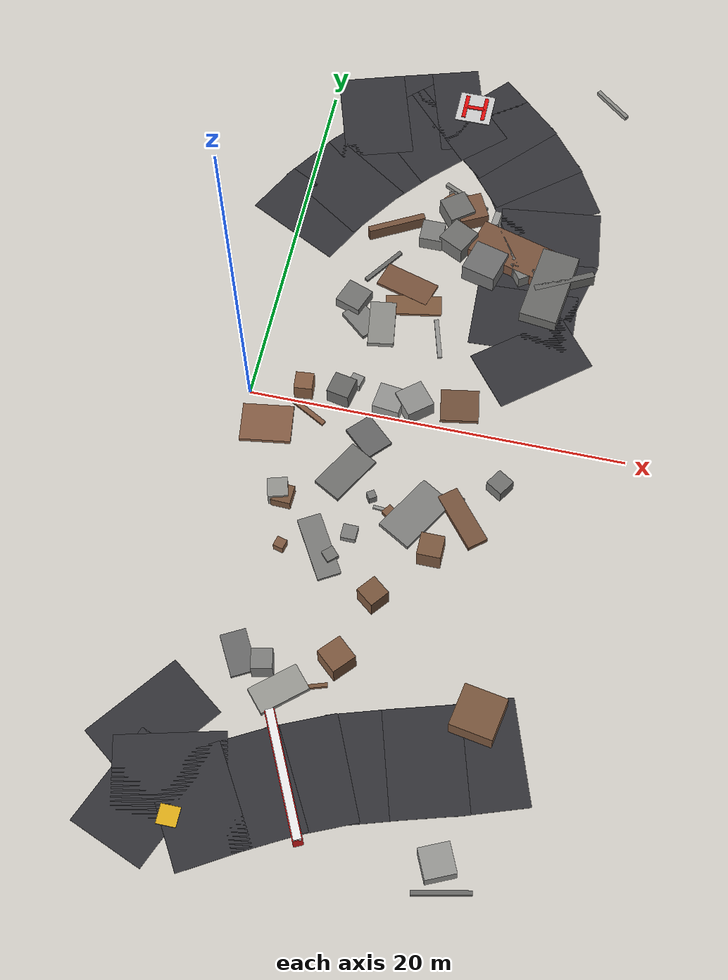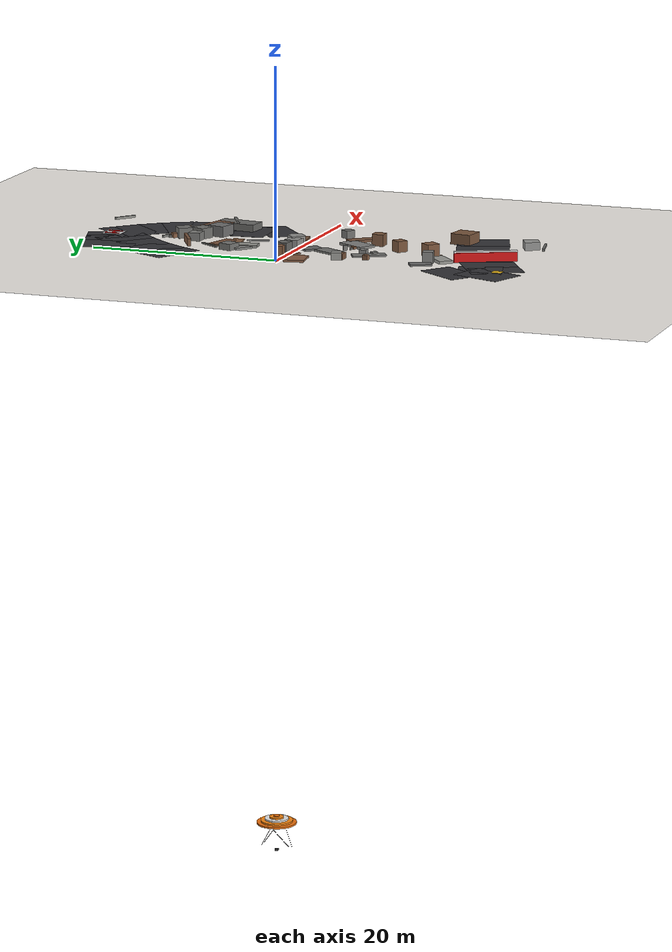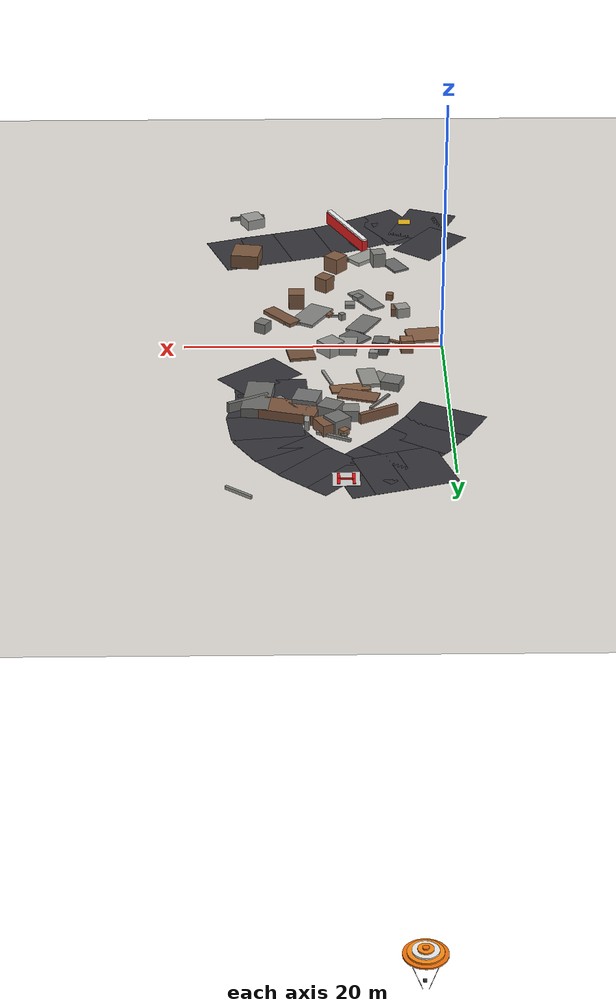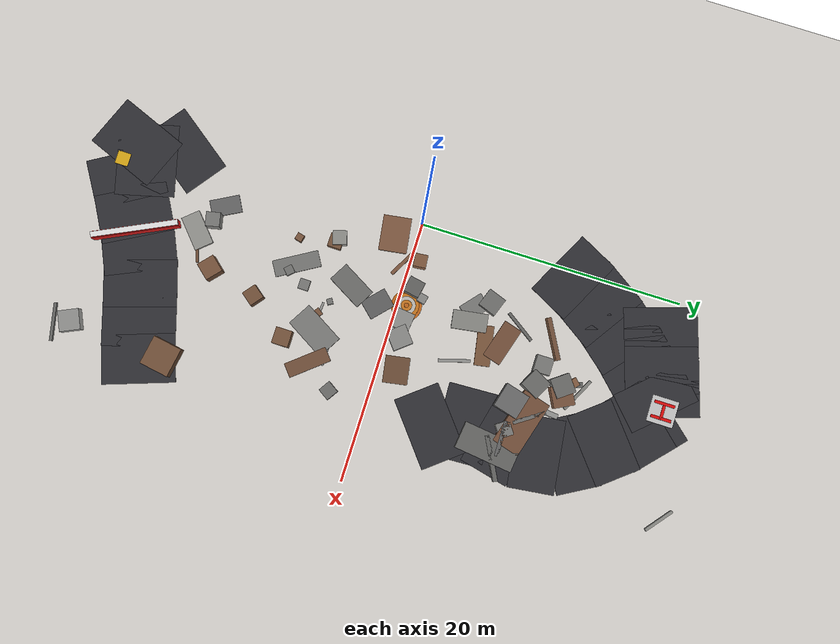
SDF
<sdf version="1.6">
 <world name="navitas_arena">
  <model name="ground_plane">
   <static>true</static>
   <link name="link">
    <collision name="collision">
     <geometry><plane><normal>0 0 1</normal><size>400 400</size></plane></geometry>
     <surface><friction><ode><mu>0.550</mu><mu2>0.550</mu2></ode></friction></surface>
    </collision>
    <visual name="visual">
     <cast_shadows>false</cast_shadows>
     <geometry><plane><normal>0 0 1</normal><size>400 400</size></plane></geometry>
     <material><ambient>0.450 0.400 0.320 1</ambient><diffuse>0.450 0.400 0.320 1</diffuse></material>
    </visual>
   </link>
  </model>
  <model name="road_orta_1_0">
   <static>true</static>
   <pose>0.477 -22.399 0.040 0 0 2.760</pose>
   <link name="link">
    <collision name="col"><geometry><box><size>4.130 5.500 0.020</size></box></geometry></collision>
    <visual name="vis">
     <geometry><box><size>4.130 5.500 0.020</size></box></geometry>
     <material><ambient>0.20 0.20 0.22 1</ambient><diffuse>0.20 0.20 0.22 1</diffuse></material>
    </visual>
   </link>
  </model>
  <model name="road_orta_1_23">
   <static>true</static>
   <pose>2.470 19.305 0.040 0 0 0.305</pose>
   <link name="link">
    <collision name="col"><geometry><box><size>3.798 5.500 0.020</size></box></geometry></collision>
    <visual name="vis">
     <geometry><box><size>3.798 5.500 0.020</size></box></geometry>
     <material><ambient>0.20 0.20 0.22 1</ambient><diffuse>0.20 0.20 0.22 1</diffuse></material>
    </visual>
   </link>
  </model>
  <model name="road_orta_1_24">
   <static>true</static>
   <pose>5.068 20.108 0.040 0 0 0.294</pose>
   <link name="link">
    <collision name="col"><geometry><box><size>3.441 5.500 0.020</size></box></geometry></collision>
    <visual name="vis">
     <geometry><box><size>3.441 5.500 0.020</size></box></geometry>
     <material><ambient>0.20 0.20 0.22 1</ambient><diffuse>0.20 0.20 0.22 1</diffuse></material>
    </visual>
   </link>
  </model>
  <model name="road_orta_1_25">
   <static>true</static>
   <pose>7.133 20.738 0.040 0 0 0.299</pose>
   <link name="link">
    <collision name="col"><geometry><box><size>2.678 5.500 0.020</size></box></geometry></collision>
    <visual name="vis">
     <geometry><box><size>2.678 5.500 0.020</size></box></geometry>
     <material><ambient>0.20 0.20 0.22 1</ambient><diffuse>0.20 0.20 0.22 1</diffuse></material>
    </visual>
   </link>
  </model>
  <model name="road_orta_2_0">
   <static>true</static>
   <pose>1.531 -21.250 0.040 0 0 1.820</pose>
   <link name="link">
    <collision name="col"><geometry><box><size>4.511 5.500 0.020</size></box></geometry></collision>
    <visual name="vis">
     <geometry><box><size>4.511 5.500 0.020</size></box></geometry>
     <material><ambient>0.20 0.20 0.22 1</ambient><diffuse>0.20 0.20 0.22 1</diffuse></material>
    </visual>
   </link>
  </model>
  <model name="road_orta_2_1">
   <static>true</static>
   <pose>0.006 -18.696 0.040 0 0 2.502</pose>
   <link name="link">
    <collision name="col"><geometry><box><size>3.594 5.500 0.020</size></box></geometry></collision>
    <visual name="vis">
     <geometry><box><size>3.594 5.500 0.020</size></box></geometry>
     <material><ambient>0.20 0.20 0.22 1</ambient><diffuse>0.20 0.20 0.22 1</diffuse></material>
    </visual>
   </link>
  </model>
  <model name="road_orta_2_13">
   <static>true</static>
   <pose>0.463 11.926 0.040 0 0 1.095</pose>
   <link name="link">
    <collision name="col"><geometry><box><size>3.317 5.500 0.020</size></box></geometry></collision>
    <visual name="vis">
     <geometry><box><size>3.317 5.500 0.020</size></box></geometry>
     <material><ambient>0.20 0.20 0.22 1</ambient><diffuse>0.20 0.20 0.22 1</diffuse></material>
    </visual>
   </link>
  </model>
  <model name="road_orta_2_14">
   <static>true</static>
   <pose>1.842 14.234 0.040 0 0 0.981</pose>
   <link name="link">
    <collision name="col"><geometry><box><size>3.871 5.500 0.020</size></box></geometry></collision>
    <visual name="vis">
     <geometry><box><size>3.871 5.500 0.020</size></box></geometry>
     <material><ambient>0.20 0.20 0.22 1</ambient><diffuse>0.20 0.20 0.22 1</diffuse></material>
    </visual>
   </link>
  </model>
  <model name="road_orta_2_15">
   <static>true</static>
   <pose>3.529 16.484 0.040 0 0 0.868</pose>
   <link name="link">
    <collision name="col"><geometry><box><size>3.563 5.500 0.020</size></box></geometry></collision>
    <visual name="vis">
     <geometry><box><size>3.563 5.500 0.020</size></box></geometry>
     <material><ambient>0.20 0.20 0.22 1</ambient><diffuse>0.20 0.20 0.22 1</diffuse></material>
    </visual>
   </link>
  </model>
  <model name="road_orta_2_16">
   <static>true</static>
   <pose>5.394 18.516 0.040 0 0 0.791</pose>
   <link name="link">
    <collision name="col"><geometry><box><size>3.756 5.500 0.020</size></box></geometry></collision>
    <visual name="vis">
     <geometry><box><size>3.756 5.500 0.020</size></box></geometry>
     <material><ambient>0.20 0.20 0.22 1</ambient><diffuse>0.20 0.20 0.22 1</diffuse></material>
    </visual>
   </link>
  </model>
  <model name="road_orta_2_17">
   <static>true</static>
   <pose>7.190 20.266 0.040 0 0 0.747</pose>
   <link name="link">
    <collision name="col"><geometry><box><size>3.061 5.500 0.020</size></box></geometry></collision>
    <visual name="vis">
     <geometry><box><size>3.061 5.500 0.020</size></box></geometry>
     <material><ambient>0.20 0.20 0.22 1</ambient><diffuse>0.20 0.20 0.22 1</diffuse></material>
    </visual>
   </link>
  </model>
  <model name="road_orta_3_0">
   <static>true</static>
   <pose>3.199 -22.266 0.040 0 0 0.541</pose>
   <link name="link">
    <collision name="col"><geometry><box><size>3.753 5.500 0.020</size></box></geometry></collision>
    <visual name="vis">
     <geometry><box><size>3.753 5.500 0.020</size></box></geometry>
     <material><ambient>0.20 0.20 0.22 1</ambient><diffuse>0.20 0.20 0.22 1</diffuse></material>
    </visual>
   </link>
  </model>
  <model name="road_orta_3_1">
   <static>true</static>
   <pose>5.646 -20.856 0.040 0 0 0.504</pose>
   <link name="link">
    <collision name="col"><geometry><box><size>3.696 5.500 0.020</size></box></geometry></collision>
    <visual name="vis">
     <geometry><box><size>3.696 5.500 0.020</size></box></geometry>
     <material><ambient>0.20 0.20 0.22 1</ambient><diffuse>0.20 0.20 0.22 1</diffuse></material>
    </visual>
   </link>
  </model>
  <model name="road_orta_3_2">
   <static>true</static>
   <pose>8.079 -19.642 0.040 0 0 0.420</pose>
   <link name="link">
    <collision name="col"><geometry><box><size>3.548 5.500 0.020</size></box></geometry></collision>
    <visual name="vis">
     <geometry><box><size>3.548 5.500 0.020</size></box></geometry>
     <material><ambient>0.20 0.20 0.22 1</ambient><diffuse>0.20 0.20 0.22 1</diffuse></material>
    </visual>
   </link>
  </model>
  <model name="road_orta_3_3">
   <static>true</static>
   <pose>10.548 -18.702 0.040 0 0 0.307</pose>
   <link name="link">
    <collision name="col"><geometry><box><size>3.545 5.500 0.020</size></box></geometry></collision>
    <visual name="vis">
     <geometry><box><size>3.545 5.500 0.020</size></box></geometry>
     <material><ambient>0.20 0.20 0.22 1</ambient><diffuse>0.20 0.20 0.22 1</diffuse></material>
    </visual>
   </link>
  </model>
  <model name="road_orta_3_4">
   <static>true</static>
   <pose>13.211 -17.886 0.040 0 0 0.289</pose>
   <link name="link">
    <collision name="col"><geometry><box><size>3.826 5.500 0.020</size></box></geometry></collision>
    <visual name="vis">
     <geometry><box><size>3.826 5.500 0.020</size></box></geometry>
     <material><ambient>0.20 0.20 0.22 1</ambient><diffuse>0.20 0.20 0.22 1</diffuse></material>
    </visual>
   </link>
  </model>
  <model name="road_orta_3_5">
   <static>true</static>
   <pose>15.912 -17.017 0.040 0 0 0.335</pose>
   <link name="link">
    <collision name="col"><geometry><box><size>3.650 5.500 0.020</size></box></geometry></collision>
    <visual name="vis">
     <geometry><box><size>3.650 5.500 0.020</size></box></geometry>
     <material><ambient>0.20 0.20 0.22 1</ambient><diffuse>0.20 0.20 0.22 1</diffuse></material>
    </visual>
   </link>
  </model>
  <model name="road_orta_3_14">
   <static>true</static>
   <pose>14.162 5.000 0.040 0 0 2.250</pose>
   <link name="link">
    <collision name="col"><geometry><box><size>3.471 5.500 0.020</size></box></geometry></collision>
    <visual name="vis">
     <geometry><box><size>3.471 5.500 0.020</size></box></geometry>
     <material><ambient>0.20 0.20 0.22 1</ambient><diffuse>0.20 0.20 0.22 1</diffuse></material>
    </visual>
   </link>
  </model>
  <model name="road_orta_3_15">
   <static>true</static>
   <pose>13.293 7.460 0.040 0 0 1.613</pose>
   <link name="link">
    <collision name="col"><geometry><box><size>3.823 5.500 0.020</size></box></geometry></collision>
    <visual name="vis">
     <geometry><box><size>3.823 5.500 0.020</size></box></geometry>
     <material><ambient>0.20 0.20 0.22 1</ambient><diffuse>0.20 0.20 0.22 1</diffuse></material>
    </visual>
   </link>
  </model>
  <model name="road_orta_3_16">
   <static>true</static>
   <pose>13.566 10.340 0.040 0 0 1.339</pose>
   <link name="link">
    <collision name="col"><geometry><box><size>3.818 5.500 0.020</size></box></geometry></collision>
    <visual name="vis">
     <geometry><box><size>3.818 5.500 0.020</size></box></geometry>
     <material><ambient>0.20 0.20 0.22 1</ambient><diffuse>0.20 0.20 0.22 1</diffuse></material>
    </visual>
   </link>
  </model>
  <model name="road_orta_3_17">
   <static>true</static>
   <pose>13.746 13.042 0.040 0 0 1.692</pose>
   <link name="link">
    <collision name="col"><geometry><box><size>3.483 5.500 0.020</size></box></geometry></collision>
    <visual name="vis">
     <geometry><box><size>3.483 5.500 0.020</size></box></geometry>
     <material><ambient>0.20 0.20 0.22 1</ambient><diffuse>0.20 0.20 0.22 1</diffuse></material>
    </visual>
   </link>
  </model>
  <model name="road_orta_3_18">
   <static>true</static>
   <pose>12.963 15.414 0.040 0 0 2.093</pose>
   <link name="link">
    <collision name="col"><geometry><box><size>3.415 5.500 0.020</size></box></geometry></collision>
    <visual name="vis">
     <geometry><box><size>3.415 5.500 0.020</size></box></geometry>
     <material><ambient>0.20 0.20 0.22 1</ambient><diffuse>0.20 0.20 0.22 1</diffuse></material>
    </visual>
   </link>
  </model>
  <model name="road_orta_3_19">
   <static>true</static>
   <pose>11.514 17.516 0.040 0 0 2.253</pose>
   <link name="link">
    <collision name="col"><geometry><box><size>3.507 5.500 0.020</size></box></geometry></collision>
    <visual name="vis">
     <geometry><box><size>3.507 5.500 0.020</size></box></geometry>
     <material><ambient>0.20 0.20 0.22 1</ambient><diffuse>0.20 0.20 0.22 1</diffuse></material>
    </visual>
   </link>
  </model>
  <model name="road_orta_3_20">
   <static>true</static>
   <pose>9.677 19.461 0.040 0 0 2.398</pose>
   <link name="link">
    <collision name="col"><geometry><box><size>3.659 5.500 0.020</size></box></geometry></collision>
    <visual name="vis">
     <geometry><box><size>3.659 5.500 0.020</size></box></geometry>
     <material><ambient>0.20 0.20 0.22 1</ambient><diffuse>0.20 0.20 0.22 1</diffuse></material>
    </visual>
   </link>
  </model>
  <model name="road_orta_3_21">
   <static>true</static>
   <pose>8.322 20.697 0.040 0 0 2.412</pose>
   <link name="link">
    <collision name="col"><geometry><box><size>1.809 5.500 0.020</size></box></geometry></collision>
    <visual name="vis">
     <geometry><box><size>1.809 5.500 0.020</size></box></geometry>
     <material><ambient>0.20 0.20 0.22 1</ambient><diffuse>0.20 0.20 0.22 1</diffuse></material>
    </visual>
   </link>
  </model>
  <model name="bar_orta_3">
   <static>true</static>
   <pose>6.870 -20.182 0.500 0 0 2.019</pose>
   <link name="link">
    <collision name="col"><geometry><box><size>6.500 0.500 1.000</size></box></geometry></collision>
    <visual name="vis">
     <geometry><box><size>6.500 0.500 1.000</size></box></geometry>
     <material><ambient>0.85 0.10 0.10 1</ambient><diffuse>0.85 0.10 0.10 1</diffuse></material>
    </visual>
   </link>
  </model>
  <model name="bar_orta_3b">
   <static>true</static>
   <pose>6.870 -20.182 1.000 0 0 2.019</pose>
   <link name="link">
    <collision name="col"><geometry><box><size>6.500 0.400 0.300</size></box></geometry></collision>
    <visual name="vis">
     <geometry><box><size>6.500 0.400 0.300</size></box></geometry>
     <material><ambient>0.95 0.95 0.95 1</ambient><diffuse>0.95 0.95 0.95 1</diffuse></material>
    </visual>
   </link>
  </model>
  <model name="blk_orta_3_0_4">
   <static>true</static>
   <pose>15.220 -15.275 0.569 0 0 2.973</pose>
   <link name="link">
    <collision name="col"><geometry><box><size>2.227 2.227 1.138</size></box></geometry></collision>
    <visual name="vis">
     <geometry><box><size>2.227 2.227 1.138</size></box></geometry>
     <material><ambient>0.48 0.34 0.24 1</ambient><diffuse>0.48 0.34 0.24 1</diffuse></material>
    </visual>
   </link>
  </model>
  <model name="blk_orta_3_2_0">
   <static>true</static>
   <pose>10.547 11.632 0.400 0 0 1.480</pose>
   <link name="link">
    <collision name="col"><geometry><box><size>4.009 0.379 0.800</size></box></geometry></collision>
    <visual name="vis">
     <geometry><box><size>4.009 0.379 0.800</size></box></geometry>
     <material><ambient>0.61 0.61 0.60 1</ambient><diffuse>0.61 0.61 0.60 1</diffuse></material>
    </visual>
   </link>
  </model>
  <model name="blk_orta_3_2_1">
   <static>true</static>
   <pose>10.640 10.084 0.571 0 0 1.307</pose>
   <link name="link">
    <collision name="col"><geometry><box><size>1.881 1.881 1.143</size></box></geometry></collision>
    <visual name="vis">
     <geometry><box><size>1.881 1.881 1.143</size></box></geometry>
     <material><ambient>0.44 0.44 0.44 1</ambient><diffuse>0.44 0.44 0.44 1</diffuse></material>
    </visual>
   </link>
  </model>
  <model name="blk_orta_3_2_2">
   <static>true</static>
   <pose>11.931 11.241 0.400 0 0 2.860</pose>
   <link name="link">
    <collision name="col"><geometry><box><size>4.355 2.118 0.800</size></box></geometry></collision>
    <visual name="vis">
     <geometry><box><size>4.355 2.118 0.800</size></box></geometry>
     <material><ambient>0.48 0.33 0.24 1</ambient><diffuse>0.48 0.33 0.24 1</diffuse></material>
    </visual>
   </link>
  </model>
  <model name="blk_orta_3_2_3">
   <static>true</static>
   <pose>11.399 11.676 0.400 0 0 2.165</pose>
   <link name="link">
    <collision name="col"><geometry><box><size>2.487 0.286 0.800</size></box></geometry></collision>
    <visual name="vis">
     <geometry><box><size>2.487 0.286 0.800</size></box></geometry>
     <material><ambient>0.46 0.46 0.45 1</ambient><diffuse>0.46 0.46 0.45 1</diffuse></material>
    </visual>
   </link>
  </model>
  <model name="blk_orta_3_2_4">
   <static>true</static>
   <pose>15.040 9.894 0.400 0 0 0.474</pose>
   <link name="link">
    <collision name="col"><geometry><box><size>3.369 0.335 0.800</size></box></geometry></collision>
    <visual name="vis">
     <geometry><box><size>3.369 0.335 0.800</size></box></geometry>
     <material><ambient>0.41 0.41 0.40 1</ambient><diffuse>0.41 0.41 0.40 1</diffuse></material>
    </visual>
   </link>
  </model>
  <model name="blk_orta_3_2_5">
   <static>true</static>
   <pose>12.753 10.206 0.400 0 0 0.592</pose>
   <link name="link">
    <collision name="col"><geometry><box><size>1.083 1.083 0.800</size></box></geometry></collision>
    <visual name="vis">
     <geometry><box><size>1.083 1.083 0.800</size></box></geometry>
     <material><ambient>0.50 0.50 0.49 1</ambient><diffuse>0.50 0.50 0.49 1</diffuse></material>
    </visual>
   </link>
  </model>
  <model name="blk_orta_3_2_6">
   <static>true</static>
   <pose>13.459 10.180 0.400 0 0 3.140</pose>
   <link name="link">
    <collision name="col"><geometry><box><size>2.634 0.311 0.800</size></box></geometry></collision>
    <visual name="vis">
     <geometry><box><size>2.634 0.311 0.800</size></box></geometry>
     <material><ambient>0.41 0.41 0.41 1</ambient><diffuse>0.41 0.41 0.41 1</diffuse></material>
    </visual>
   </link>
  </model>
  <model name="blk_orta_3_2_7">
   <static>true</static>
   <pose>14.312 9.441 0.400 0 0 1.447</pose>
   <link name="link">
    <collision name="col"><geometry><box><size>4.401 2.040 0.800</size></box></geometry></collision>
    <visual name="vis">
     <geometry><box><size>4.401 2.040 0.800</size></box></geometry>
     <material><ambient>0.42 0.42 0.41 1</ambient><diffuse>0.42 0.42 0.41 1</diffuse></material>
    </visual>
   </link>
  </model>
  <model name="deb_orta_5">
   <static>true</static>
   <pose>12.416 -5.000 0.147 0 0 2.264</pose>
   <link name="link">
    <collision name="col"><geometry><box><size>3.263 1.098 0.294</size></box></geometry></collision>
    <visual name="vis">
     <geometry><box><size>3.263 1.098 0.294</size></box></geometry>
     <material><ambient>0.47 0.33 0.24 1</ambient><diffuse>0.47 0.33 0.24 1</diffuse></material>
    </visual>
   </link>
  </model>
  <model name="deb_orta_12">
   <static>true</static>
   <pose>10.986 1.422 0.120 0 0 1.738</pose>
   <link name="link">
    <collision name="col"><geometry><box><size>1.837 2.015 0.240</size></box></geometry></collision>
    <visual name="vis">
     <geometry><box><size>1.837 2.015 0.240</size></box></geometry>
     <material><ambient>0.45 0.32 0.23 1</ambient><diffuse>0.45 0.32 0.23 1</diffuse></material>
    </visual>
   </link>
  </model>
  <model name="deb_orta_14">
   <static>true</static>
   <pose>4.476 -14.843 0.587 0 0 0.213</pose>
   <link name="link">
    <collision name="col"><geometry><box><size>1.065 1.065 1.173</size></box></geometry></collision>
    <visual name="vis">
     <geometry><box><size>1.065 1.065 1.173</size></box></geometry>
     <material><ambient>0.50 0.50 0.49 1</ambient><diffuse>0.50 0.50 0.49 1</diffuse></material>
    </visual>
   </link>
  </model>
  <model name="deb_orta_19">
   <static>true</static>
   <pose>4.114 6.676 0.339 0 0 2.794</pose>
   <link name="link">
    <collision name="col"><geometry><box><size>1.428 1.428 0.678</size></box></geometry></collision>
    <visual name="vis">
     <geometry><box><size>1.428 1.428 0.678</size></box></geometry>
     <material><ambient>0.46 0.46 0.45 1</ambient><diffuse>0.46 0.46 0.45 1</diffuse></material>
    </visual>
   </link>
  </model>
  <model name="deb_orta_21">
   <static>true</static>
   <pose>3.743 -8.395 0.254 0 0 2.897</pose>
   <link name="link">
    <collision name="col"><geometry><box><size>0.539 0.539 0.508</size></box></geometry></collision>
    <visual name="vis">
     <geometry><box><size>0.539 0.539 0.508</size></box></geometry>
     <material><ambient>0.51 0.36 0.26 1</ambient><diffuse>0.51 0.36 0.26 1</diffuse></material>
    </visual>
   </link>
  </model>
  <model name="deb_orta_28">
   <static>true</static>
   <pose>3.127 -14.437 0.082 0 0 2.074</pose>
   <link name="link">
    <collision name="col"><geometry><box><size>2.271 1.317 0.164</size></box></geometry></collision>
    <visual name="vis">
     <geometry><box><size>2.271 1.317 0.164</size></box></geometry>
     <material><ambient>0.42 0.42 0.42 1</ambient><diffuse>0.42 0.42 0.42 1</diffuse></material>
    </visual>
   </link>
  </model>
  <model name="deb_orta_41">
   <static>true</static>
   <pose>15.202 -23.885 0.137 0 0 0.207</pose>
   <link name="link">
    <collision name="col"><geometry><box><size>2.855 0.220 0.275</size></box></geometry></collision>
    <visual name="vis">
     <geometry><box><size>2.855 0.220 0.275</size></box></geometry>
     <material><ambient>0.42 0.42 0.41 1</ambient><diffuse>0.42 0.42 0.41 1</diffuse></material>
    </visual>
   </link>
  </model>
  <model name="deb_orta_44">
   <static>true</static>
   <pose>9.169 13.535 0.440 0 0 2.048</pose>
   <link name="link">
    <collision name="col"><geometry><box><size>1.590 1.590 0.880</size></box></geometry></collision>
    <visual name="vis">
     <geometry><box><size>1.590 1.590 0.880</size></box></geometry>
     <material><ambient>0.49 0.34 0.25 1</ambient><diffuse>0.49 0.34 0.25 1</diffuse></material>
    </visual>
   </link>
  </model>
  <model name="deb_orta_46">
   <static>true</static>
   <pose>7.371 0.736 0.437 0 0 3.025</pose>
   <link name="link">
    <collision name="col"><geometry><box><size>1.445 1.445 0.875</size></box></geometry></collision>
    <visual name="vis">
     <geometry><box><size>1.445 1.445 0.875</size></box></geometry>
     <material><ambient>0.59 0.59 0.58 1</ambient><diffuse>0.59 0.59 0.58 1</diffuse></material>
    </visual>
   </link>
  </model>
  <model name="deb_orta_49">
   <static>true</static>
   <pose>15.689 22.864 0.123 0 0 2.465</pose>
   <link name="link">
    <collision name="col"><geometry><box><size>2.395 0.215 0.246</size></box></geometry></collision>
    <visual name="vis">
     <geometry><box><size>2.395 0.215 0.246</size></box></geometry>
     <material><ambient>0.57 0.57 0.55 1</ambient><diffuse>0.57 0.57 0.55 1</diffuse></material>
    </visual>
   </link>
  </model>
  <model name="deb_orta_51">
   <static>true</static>
   <pose>8.665 0.924 0.505 0 0 0.687</pose>
   <link name="link">
    <collision name="col"><geometry><box><size>1.512 1.512 1.010</size></box></geometry></collision>
    <visual name="vis">
     <geometry><box><size>1.512 1.512 1.010</size></box></geometry>
     <material><ambient>0.57 0.57 0.56 1</ambient><diffuse>0.57 0.57 0.56 1</diffuse></material>
    </visual>
   </link>
  </model>
  <model name="deb_orta_54">
   <static>true</static>
   <pose>9.030 5.280 0.072 0 0 1.854</pose>
   <link name="link">
    <collision name="col"><geometry><box><size>2.383 0.234 0.144</size></box></geometry></collision>
    <visual name="vis">
     <geometry><box><size>2.383 0.234 0.144</size></box></geometry>
     <material><ambient>0.59 0.59 0.58 1</ambient><diffuse>0.59 0.59 0.58 1</diffuse></material>
    </visual>
   </link>
  </model>
  <model name="deb_orta_58">
   <static>true</static>
   <pose>2.791 0.712 0.527 0 0 1.662</pose>
   <link name="link">
    <collision name="col"><geometry><box><size>0.965 0.965 1.055</size></box></geometry></collision>
    <visual name="vis">
     <geometry><box><size>0.965 0.965 1.055</size></box></geometry>
     <material><ambient>0.53 0.37 0.26 1</ambient><diffuse>0.53 0.37 0.26 1</diffuse></material>
    </visual>
   </link>
  </model>
  <model name="deb_orta_59">
   <static>true</static>
   <pose>7.972 14.610 0.129 0 0 0.261</pose>
   <link name="link">
    <collision name="col"><geometry><box><size>0.421 0.421 0.258</size></box></geometry></collision>
    <visual name="vis">
     <geometry><box><size>0.421 0.421 0.258</size></box></geometry>
     <material><ambient>0.40 0.40 0.39 1</ambient><diffuse>0.40 0.40 0.39 1</diffuse></material>
    </visual>
   </link>
  </model>
  <model name="deb_orta_60">
   <static>true</static>
   <pose>11.486 -3.935 0.070 0 0 0.001</pose>
   <link name="link">
    <collision name="col"><geometry><box><size>1.657 0.226 0.141</size></box></geometry></collision>
    <visual name="vis">
     <geometry><box><size>1.657 0.226 0.141</size></box></geometry>
     <material><ambient>0.54 0.54 0.53 1</ambient><diffuse>0.54 0.54 0.53 1</diffuse></material>
    </visual>
   </link>
  </model>
  <model name="deb_orta_63">
   <static>true</static>
   <pose>11.231 -7.262 0.622 0 0 1.570</pose>
   <link name="link">
    <collision name="col"><geometry><box><size>1.223 1.223 1.244</size></box></geometry></collision>
    <visual name="vis">
     <geometry><box><size>1.223 1.223 1.244</size></box></geometry>
     <material><ambient>0.49 0.35 0.25 1</ambient><diffuse>0.49 0.35 0.25 1</diffuse></material>
    </visual>
   </link>
  </model>
  <model name="deb_orta_71">
   <static>true</static>
   <pose>14.733 -22.623 0.420 0 0 2.000</pose>
   <link name="link">
    <collision name="col"><geometry><box><size>1.553 1.553 0.840</size></box></geometry></collision>
    <visual name="vis">
     <geometry><box><size>1.553 1.553 0.840</size></box></geometry>
     <material><ambient>0.60 0.60 0.59 1</ambient><diffuse>0.60 0.60 0.59 1</diffuse></material>
    </visual>
   </link>
  </model>
  <model name="deb_orta_77">
   <static>true</static>
   <pose>8.466 13.332 0.543 0 0 0.642</pose>
   <link name="link">
    <collision name="col"><geometry><box><size>1.476 1.476 1.086</size></box></geometry></collision>
    <visual name="vis">
     <geometry><box><size>1.476 1.476 1.086</size></box></geometry>
     <material><ambient>0.44 0.44 0.43 1</ambient><diffuse>0.44 0.44 0.43 1</diffuse></material>
    </visual>
   </link>
  </model>
  <model name="deb_orta_79">
   <static>true</static>
   <pose>8.943 -10.260 0.580 0 0 2.473</pose>
   <link name="link">
    <collision name="col"><geometry><box><size>1.121 1.121 1.160</size></box></geometry></collision>
    <visual name="vis">
     <geometry><box><size>1.121 1.121 1.160</size></box></geometry>
     <material><ambient>0.48 0.34 0.24 1</ambient><diffuse>0.48 0.34 0.24 1</diffuse></material>
    </visual>
   </link>
  </model>
  <model name="deb_orta_82">
   <static>true</static>
   <pose>5.902 5.515 0.149 0 0 1.719</pose>
   <link name="link">
    <collision name="col"><geometry><box><size>2.622 1.394 0.297</size></box></geometry></collision>
    <visual name="vis">
     <geometry><box><size>2.622 1.394 0.297</size></box></geometry>
     <material><ambient>0.56 0.56 0.54 1</ambient><diffuse>0.56 0.56 0.54 1</diffuse></material>
    </visual>
   </link>
  </model>
  <model name="deb_orta_85">
   <static>true</static>
   <pose>5.523 -15.880 0.150 0 0 0.722</pose>
   <link name="link">
    <collision name="col"><geometry><box><size>2.647 1.452 0.300</size></box></geometry></collision>
    <visual name="vis">
     <geometry><box><size>2.647 1.452 0.300</size></box></geometry>
     <material><ambient>0.61 0.61 0.59 1</ambient><diffuse>0.61 0.61 0.59 1</diffuse></material>
    </visual>
   </link>
  </model>
  <model name="deb_orta_89">
   <static>true</static>
   <pose>8.742 14.680 0.114 0 0 2.676</pose>
   <link name="link">
    <collision name="col"><geometry><box><size>2.810 0.232 0.227</size></box></geometry></collision>
    <visual name="vis">
     <geometry><box><size>2.810 0.232 0.227</size></box></geometry>
     <material><ambient>0.53 0.53 0.51 1</ambient><diffuse>0.53 0.53 0.51 1</diffuse></material>
    </visual>
   </link>
  </model>
  <model name="deb_orta_90">
   <static>true</static>
   <pose>7.965 -13.902 0.637 0 0 0.848</pose>
   <link name="link">
    <collision name="col"><geometry><box><size>1.344 1.344 1.274</size></box></geometry></collision>
    <visual name="vis">
     <geometry><box><size>1.344 1.344 1.274</size></box></geometry>
     <material><ambient>0.50 0.35 0.25 1</ambient><diffuse>0.50 0.35 0.25 1</diffuse></material>
    </visual>
   </link>
  </model>
  <model name="deb_orta_93">
   <static>true</static>
   <pose>13.927 -2.870 0.413 0 0 0.998</pose>
   <link name="link">
    <collision name="col"><geometry><box><size>0.975 0.975 0.826</size></box></geometry></collision>
    <visual name="vis">
     <geometry><box><size>0.975 0.975 0.826</size></box></geometry>
     <material><ambient>0.45 0.45 0.44 1</ambient><diffuse>0.45 0.45 0.44 1</diffuse></material>
    </visual>
   </link>
  </model>
  <model name="deb_orta_95">
   <static>true</static>
   <pose>10.044 -5.229 0.125 0 0 1.038</pose>
   <link name="link">
    <collision name="col"><geometry><box><size>3.384 1.967 0.251</size></box></geometry></collision>
    <visual name="vis">
     <geometry><box><size>3.384 1.967 0.251</size></box></geometry>
     <material><ambient>0.51 0.51 0.50 1</ambient><diffuse>0.51 0.51 0.50 1</diffuse></material>
    </visual>
   </link>
  </model>
  <model name="deb_orta_96">
   <static>true</static>
   <pose>8.915 11.416 0.556 0 0 1.088</pose>
   <link name="link">
    <collision name="col"><geometry><box><size>1.510 1.510 1.112</size></box></geometry></collision>
    <visual name="vis">
     <geometry><box><size>1.510 1.510 1.112</size></box></geometry>
     <material><ambient>0.44 0.44 0.43 1</ambient><diffuse>0.44 0.44 0.43 1</diffuse></material>
    </visual>
   </link>
  </model>
  <model name="deb_orta_97">
   <static>true</static>
   <pose>7.998 14.147 0.232 0 0 2.365</pose>
   <link name="link">
    <collision name="col"><geometry><box><size>0.638 0.638 0.465</size></box></geometry></collision>
    <visual name="vis">
     <geometry><box><size>0.638 0.638 0.465</size></box></geometry>
     <material><ambient>0.54 0.38 0.27 1</ambient><diffuse>0.54 0.38 0.27 1</diffuse></material>
    </visual>
   </link>
  </model>
  <model name="deb_orta_99">
   <static>true</static>
   <pose>6.000 -3.630 0.105 0 0 1.055</pose>
   <link name="link">
    <collision name="col"><geometry><box><size>2.905 1.607 0.210</size></box></geometry></collision>
    <visual name="vis">
     <geometry><box><size>2.905 1.607 0.210</size></box></geometry>
     <material><ambient>0.45 0.45 0.44 1</ambient><diffuse>0.45 0.45 0.44 1</diffuse></material>
    </visual>
   </link>
  </model>
  <model name="deb_orta_100">
   <static>true</static>
   <pose>6.717 8.293 0.089 0 0 2.852</pose>
   <link name="link">
    <collision name="col"><geometry><box><size>3.012 1.427 0.178</size></box></geometry></collision>
    <visual name="vis">
     <geometry><box><size>3.012 1.427 0.178</size></box></geometry>
     <material><ambient>0.48 0.33 0.24 1</ambient><diffuse>0.48 0.33 0.24 1</diffuse></material>
    </visual>
   </link>
  </model>
  <model name="deb_orta_101">
   <static>true</static>
   <pose>8.716 -5.421 0.122 0 0 0.944</pose>
   <link name="link">
    <collision name="col"><geometry><box><size>0.575 0.575 0.243</size></box></geometry></collision>
    <visual name="vis">
     <geometry><box><size>0.575 0.575 0.243</size></box></geometry>
     <material><ambient>0.50 0.35 0.25 1</ambient><diffuse>0.50 0.35 0.25 1</diffuse></material>
    </visual>
   </link>
  </model>
  <model name="deb_orta_104">
   <static>true</static>
   <pose>4.806 5.574 0.117 0 0 2.436</pose>
   <link name="link">
    <collision name="col"><geometry><box><size>1.883 1.315 0.233</size></box></geometry></collision>
    <visual name="vis">
     <geometry><box><size>1.883 1.315 0.233</size></box></geometry>
     <material><ambient>0.50 0.50 0.49 1</ambient><diffuse>0.50 0.50 0.49 1</diffuse></material>
    </visual>
   </link>
  </model>
  <model name="deb_orta_106">
   <static>true</static>
   <pose>8.752 -5.319 0.069 0 0 3.063</pose>
   <link name="link">
    <collision name="col"><geometry><box><size>1.852 0.170 0.138</size></box></geometry></collision>
    <visual name="vis">
     <geometry><box><size>1.852 0.170 0.138</size></box></geometry>
     <material><ambient>0.60 0.60 0.59 1</ambient><diffuse>0.60 0.60 0.59 1</diffuse></material>
    </visual>
   </link>
  </model>
  <model name="deb_orta_108">
   <static>true</static>
   <pose>6.307 -8.395 0.163 0 0 0.758</pose>
   <link name="link">
    <collision name="col"><geometry><box><size>0.649 0.649 0.327</size></box></geometry></collision>
    <visual name="vis">
     <geometry><box><size>0.649 0.649 0.327</size></box></geometry>
     <material><ambient>0.47 0.47 0.46 1</ambient><diffuse>0.47 0.47 0.46 1</diffuse></material>
    </visual>
   </link>
  </model>
  <model name="deb_orta_109">
   <static>true</static>
   <pose>5.172 9.211 0.075 0 0 0.967</pose>
   <link name="link">
    <collision name="col"><geometry><box><size>2.607 0.235 0.151</size></box></geometry></collision>
    <visual name="vis">
     <geometry><box><size>2.607 0.235 0.151</size></box></geometry>
     <material><ambient>0.42 0.42 0.41 1</ambient><diffuse>0.42 0.42 0.41 1</diffuse></material>
    </visual>
   </link>
  </model>
  <model name="deb_orta_123">
   <static>true</static>
   <pose>3.220 -5.721 0.322 0 0 1.542</pose>
   <link name="link">
    <collision name="col"><geometry><box><size>1.025 1.025 0.644</size></box></geometry></collision>
    <visual name="vis">
     <geometry><box><size>1.025 1.025 0.644</size></box></geometry>
     <material><ambient>0.48 0.34 0.24 1</ambient><diffuse>0.48 0.34 0.24 1</diffuse></material>
    </visual>
   </link>
  </model>
  <model name="deb_orta_124">
   <static>true</static>
   <pose>7.417 11.577 0.431 0 0 1.569</pose>
   <link name="link">
    <collision name="col"><geometry><box><size>1.256 1.256 0.863</size></box></geometry></collision>
    <visual name="vis">
     <geometry><box><size>1.256 1.256 0.863</size></box></geometry>
     <material><ambient>0.50 0.50 0.49 1</ambient><diffuse>0.50 0.50 0.49 1</diffuse></material>
    </visual>
   </link>
  </model>
  <model name="deb_orta_125">
   <static>true</static>
   <pose>6.725 -1.378 0.100 0 0 2.396</pose>
   <link name="link">
    <collision name="col"><geometry><box><size>2.002 1.504 0.200</size></box></geometry></collision>
    <visual name="vis">
     <geometry><box><size>2.002 1.504 0.200</size></box></geometry>
     <material><ambient>0.40 0.40 0.40 1</ambient><diffuse>0.40 0.40 0.40 1</diffuse></material>
    </visual>
   </link>
  </model>
  <model name="deb_orta_126">
   <static>true</static>
   <pose>5.653 -8.032 0.082 0 0 2.107</pose>
   <link name="link">
    <collision name="col"><geometry><box><size>3.493 1.237 0.165</size></box></geometry></collision>
    <visual name="vis">
     <geometry><box><size>3.493 1.237 0.165</size></box></geometry>
     <material><ambient>0.49 0.49 0.48 1</ambient><diffuse>0.49 0.49 0.48 1</diffuse></material>
    </visual>
   </link>
  </model>
  <model name="deb_orta_128">
   <static>true</static>
   <pose>6.993 -7.007 0.185 0 0 3.127</pose>
   <link name="link">
    <collision name="col"><geometry><box><size>0.782 0.782 0.370</size></box></geometry></collision>
    <visual name="vis">
     <geometry><box><size>0.782 0.782 0.370</size></box></geometry>
     <material><ambient>0.50 0.50 0.49 1</ambient><diffuse>0.50 0.50 0.49 1</diffuse></material>
    </visual>
   </link>
  </model>
  <model name="deb_orta_129">
   <static>true</static>
   <pose>7.314 7.064 0.085 0 0 0.174</pose>
   <link name="link">
    <collision name="col"><geometry><box><size>3.024 1.169 0.170</size></box></geometry></collision>
    <visual name="vis">
     <geometry><box><size>3.024 1.169 0.170</size></box></geometry>
     <material><ambient>0.51 0.36 0.25 1</ambient><diffuse>0.51 0.36 0.25 1</diffuse></material>
    </visual>
   </link>
  </model>
  <model name="deb_orta_132">
   <static>true</static>
   <pose>4.786 0.857 0.527 0 0 1.379</pose>
   <link name="link">
    <collision name="col"><geometry><box><size>1.202 1.202 1.055</size></box></geometry></collision>
    <visual name="vis">
     <geometry><box><size>1.202 1.202 1.055</size></box></geometry>
     <material><ambient>0.41 0.41 0.40 1</ambient><diffuse>0.41 0.41 0.40 1</diffuse></material>
    </visual>
   </link>
  </model>
  <model name="deb_orta_136">
   <static>true</static>
   <pose>6.745 -15.481 0.105 0 0 0.319</pose>
   <link name="link">
    <collision name="col"><geometry><box><size>2.183 0.197 0.210</size></box></geometry></collision>
    <visual name="vis">
     <geometry><box><size>2.183 0.197 0.210</size></box></geometry>
     <material><ambient>0.48 0.34 0.24 1</ambient><diffuse>0.48 0.34 0.24 1</diffuse></material>
    </visual>
   </link>
  </model>
  <model name="deb_orta_143">
   <static>true</static>
   <pose>7.643 -4.797 0.263 0 0 2.125</pose>
   <link name="link">
    <collision name="col"><geometry><box><size>0.425 0.425 0.525</size></box></geometry></collision>
    <visual name="vis">
     <geometry><box><size>0.425 0.425 0.525</size></box></geometry>
     <material><ambient>0.48 0.48 0.47 1</ambient><diffuse>0.48 0.48 0.47 1</diffuse></material>
    </visual>
   </link>
  </model>
  <model name="deb_orta_147">
   <static>true</static>
   <pose>5.369 1.670 0.239 0 0 2.908</pose>
   <link name="link">
    <collision name="col"><geometry><box><size>0.653 0.653 0.478</size></box></geometry></collision>
    <visual name="vis">
     <geometry><box><size>0.653 0.653 0.478</size></box></geometry>
     <material><ambient>0.56 0.56 0.55 1</ambient><diffuse>0.56 0.56 0.55 1</diffuse></material>
    </visual>
   </link>
  </model>
  <model name="deb_orta_148">
   <static>true</static>
   <pose>1.336 -1.703 0.112 0 0 0.143</pose>
   <link name="link">
    <collision name="col"><geometry><box><size>2.678 2.115 0.225</size></box></geometry></collision>
    <visual name="vis">
     <geometry><box><size>2.678 2.115 0.225</size></box></geometry>
     <material><ambient>0.53 0.37 0.27 1</ambient><diffuse>0.53 0.37 0.27 1</diffuse></material>
    </visual>
   </link>
  </model>
  <model name="deb_orta_149">
   <static>true</static>
   <pose>3.295 -0.539 0.067 0 0 2.637</pose>
   <link name="link">
    <collision name="col"><geometry><box><size>2.173 0.273 0.135</size></box></geometry></collision>
    <visual name="vis">
     <geometry><box><size>2.173 0.273 0.135</size></box></geometry>
     <material><ambient>0.52 0.36 0.26 1</ambient><diffuse>0.52 0.36 0.26 1</diffuse></material>
    </visual>
   </link>
  </model>
  <model name="chic_orta_1">
   <static>true</static>
   <pose>2.906 -5.516 0.400 0 0 1.857</pose>
   <link name="link">
    <collision name="col"><geometry><box><size>1.051 1.051 0.800</size></box></geometry></collision>
    <visual name="vis">
     <geometry><box><size>1.051 1.051 0.800</size></box></geometry>
     <material><ambient>0.59 0.59 0.57 1</ambient><diffuse>0.59 0.59 0.57 1</diffuse></material>
    </visual>
   </link>
  </model>
  <model name="chic_orta_3">
   <static>true</static>
   <pose>5.362 11.739 0.400 0 0 0.500</pose>
   <link name="link">
    <collision name="col"><geometry><box><size>3.196 0.346 0.800</size></box></geometry></collision>
    <visual name="vis">
     <geometry><box><size>3.196 0.346 0.800</size></box></geometry>
     <material><ambient>0.47 0.33 0.24 1</ambient><diffuse>0.47 0.33 0.24 1</diffuse></material>
    </visual>
   </link>
  </model>
  <model name="kb_orta">
   <static>true</static>
   <pose>1.976 -23.000 0.070 0 0 0.000</pose>
   <link name="link">
    <collision name="col"><geometry><box><size>1.000 1.000 0.040</size></box></geometry></collision>
    <visual name="vis">
     <geometry><box><size>1.000 1.000 0.040</size></box></geometry>
     <material><ambient>0.90 0.70 0.10 1</ambient><diffuse>0.90 0.70 0.10 1</diffuse></material>
    </visual>
   </link>
  </model>
  <model name="hbpad_orta">
   <static>true</static>
   <pose>7.983 21.000 0.070 0 0 0.000</pose>
   <link name="link">
    <collision name="col"><geometry><box><size>2.000 2.000 0.040</size></box></geometry></collision>
    <visual name="vis">
     <geometry><box><size>2.000 2.000 0.040</size></box></geometry>
     <material><ambient>0.82 0.82 0.82 1</ambient><diffuse>0.82 0.82 0.82 1</diffuse></material>
    </visual>
   </link>
  </model>
  <model name="H_orta_l">
   <static>true</static>
   <pose>7.433 21.000 0.100 0 0 0.000</pose>
   <link name="link">
    <collision name="col"><geometry><box><size>0.220 1.550 0.100</size></box></geometry></collision>
    <visual name="vis">
     <geometry><box><size>0.220 1.550 0.100</size></box></geometry>
     <material><ambient>0.90 0.05 0.05 1</ambient><diffuse>0.90 0.05 0.05 1</diffuse></material>
    </visual>
   </link>
  </model>
  <model name="H_orta_r">
   <static>true</static>
   <pose>8.533 21.000 0.100 0 0 0.000</pose>
   <link name="link">
    <collision name="col"><geometry><box><size>0.220 1.550 0.100</size></box></geometry></collision>
    <visual name="vis">
     <geometry><box><size>0.220 1.550 0.100</size></box></geometry>
     <material><ambient>0.90 0.05 0.05 1</ambient><diffuse>0.90 0.05 0.05 1</diffuse></material>
    </visual>
   </link>
  </model>
  <model name="H_orta_b">
   <static>true</static>
   <pose>7.983 21.000 0.100 0 0 0.000</pose>
   <link name="link">
    <collision name="col"><geometry><box><size>1.100 0.220 0.100</size></box></geometry></collision>
    <visual name="vis">
     <geometry><box><size>1.100 0.220 0.100</size></box></geometry>
     <material><ambient>0.90 0.05 0.05 1</ambient><diffuse>0.90 0.05 0.05 1</diffuse></material>
    </visual>
   </link>
  </model>
  <model name="parachute">
   <static>true</static>
   <pose>0 0 -60 0 0 0</pose>
   <link name="link">
    <visual name="dome0">
     <geometry><cylinder><radius>2.10</radius><length>0.16</length></cylinder></geometry>
     <material><ambient>0.95 0.45 0.05 1</ambient><diffuse>0.95 0.45 0.05 1</diffuse></material>
    </visual>
    <visual name="dome1">
     <pose>0 0 0.22 0 0 0</pose>
     <geometry><cylinder><radius>1.70</radius><length>0.16</length></cylinder></geometry>
     <material><ambient>1.0 0.55 0.08 1</ambient><diffuse>1.0 0.55 0.08 1</diffuse></material>
    </visual>
    <visual name="dome2">
     <pose>0 0 0.42 0 0 0</pose>
     <geometry><cylinder><radius>1.25</radius><length>0.16</length></cylinder></geometry>
     <material><ambient>0.95 0.95 0.95 1</ambient><diffuse>0.95 0.95 0.95 1</diffuse></material>
    </visual>
    <visual name="dome3">
     <pose>0 0 0.58 0 0 0</pose>
     <geometry><cylinder><radius>0.75</radius><length>0.16</length></cylinder></geometry>
     <material><ambient>1.0 0.55 0.08 1</ambient><diffuse>1.0 0.55 0.08 1</diffuse></material>
    </visual>
    <visual name="dome4">
     <pose>0 0 0.70 0 0 0</pose>
     <geometry><cylinder><radius>0.32</radius><length>0.16</length></cylinder></geometry>
     <material><ambient>0.95 0.45 0.05 1</ambient><diffuse>0.95 0.45 0.05 1</diffuse></material>
    </visual>
    <visual name="line0">
     <pose>0.90 0.90 -1.5 0.500 0.500 0</pose>
     <geometry><cylinder><radius>0.02</radius><length>3.0</length></cylinder></geometry>
     <material><ambient>0.1 0.1 0.1 1</ambient><diffuse>0.15 0.15 0.15 1</diffuse></material>
    </visual>
    <visual name="line1">
     <pose>0.90 -0.90 -1.5 -0.500 0.500 0</pose>
     <geometry><cylinder><radius>0.02</radius><length>3.0</length></cylinder></geometry>
     <material><ambient>0.1 0.1 0.1 1</ambient><diffuse>0.15 0.15 0.15 1</diffuse></material>
    </visual>
    <visual name="line2">
     <pose>-0.90 0.90 -1.5 0.500 -0.500 0</pose>
     <geometry><cylinder><radius>0.02</radius><length>3.0</length></cylinder></geometry>
     <material><ambient>0.1 0.1 0.1 1</ambient><diffuse>0.15 0.15 0.15 1</diffuse></material>
    </visual>
    <visual name="line3">
     <pose>-0.90 -0.90 -1.5 -0.500 -0.500 0</pose>
     <geometry><cylinder><radius>0.02</radius><length>3.0</length></cylinder></geometry>
     <material><ambient>0.1 0.1 0.1 1</ambient><diffuse>0.15 0.15 0.15 1</diffuse></material>
    </visual>
    <visual name="harness">
     <pose>0 0 -3.0 0 0 0</pose>
     <geometry><box><size>0.3 0.3 0.2</size></box></geometry>
     <material><ambient>0.2 0.2 0.2 1</ambient><diffuse>0.25 0.25 0.25 1</diffuse></material>
    </visual>
   </link>
  </model>
  <model name="rec_cam">
   <static>true</static>
   <pose>0.000 0.000 72 0 1.5708 1.5708</pose>
   <link name="link">
    <sensor name="cam" type="camera">
     <camera>
      <horizontal_fov>1.25</horizontal_fov>
      <image><width>1280</width><height>720</height><format>R8G8B8</format></image>
      <clip><near>0.1</near><far>200</far></clip>
      <save enabled="true"><path>/tmp/frames</path></save>
     </camera>
     <always_on>1</always_on>
     <update_rate>30</update_rate>
    </sensor>
   </link>
  </model>
 </world>
</sdf>
